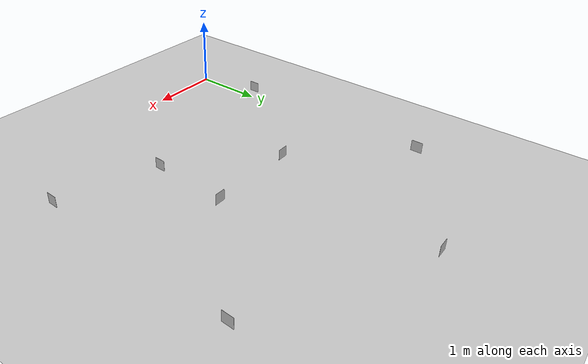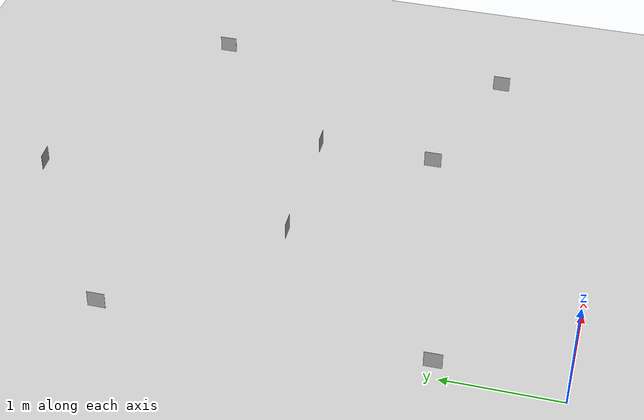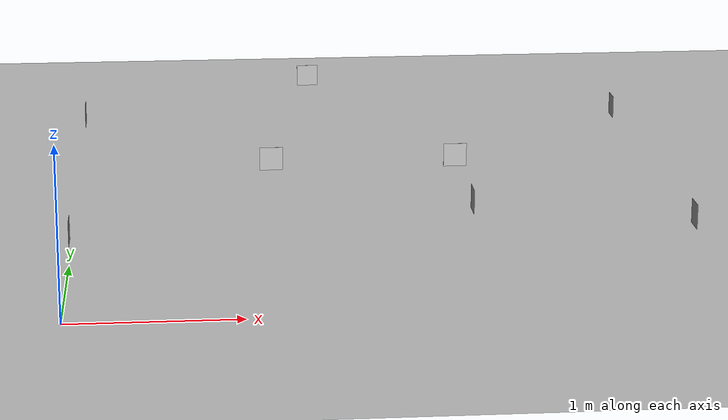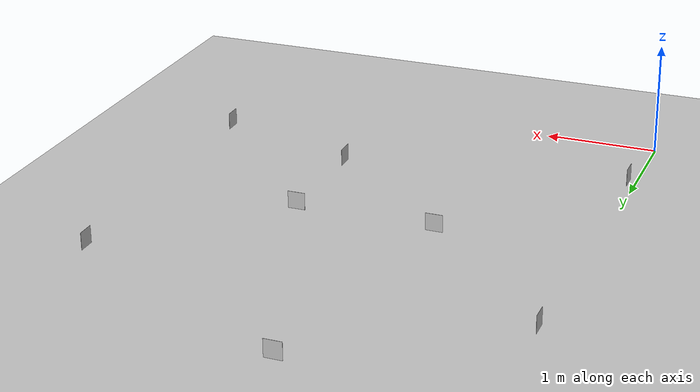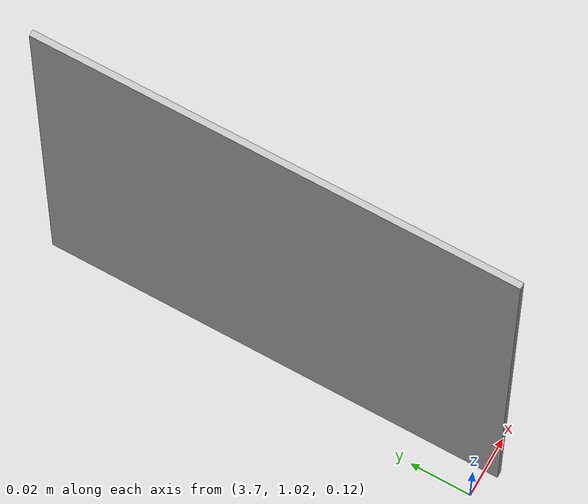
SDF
<sdf version="1.6">
 <world name="e80">
  <include><uri>model://sun</uri></include>
  <include><uri>model://ground_plane</uri></include>
  <include>
   <uri>model://aruco_4</uri>
   <name>aruco_4</name>
   <pose>0.0030 1.0500 0.2000 0.000000 1.570796 0.000000</pose>
  </include>
  <include>
   <uri>model://aruco_0</uri>
   <name>aruco_0</name>
   <pose>0.0030 3.7860 0.2000 0.000000 1.570796 0.000000</pose>
  </include>
  <include>
   <uri>model://aruco_1</uri>
   <name>aruco_1</name>
   <pose>1.6100 4.8420 0.2000 1.570796 0.000000 0.000000</pose>
  </include>
  <include>
   <uri>model://aruco_2</uri>
   <name>aruco_2</name>
   <pose>3.7080 3.7570 0.2000 0.000000 -1.570796 0.000000</pose>
  </include>
  <include>
   <uri>model://aruco_3</uri>
   <name>aruco_3</name>
   <pose>3.7080 1.0900 0.2000 0.000000 -1.570796 0.000000</pose>
  </include>
  <include>
   <uri>model://aruco_6</uri>
   <name>aruco_6</name>
   <pose>1.2430 2.5270 0.2000 1.570796 0.000000 0.000000</pose>
  </include>
  <include>
   <uri>model://aruco_5</uri>
   <name>aruco_5</name>
   <pose>2.4430 2.5270 0.2000 1.570796 0.000000 0.000000</pose>
  </include>
  <include>
   <uri>model://aruco_10</uri>
   <name>aruco_10</name>
   <pose>2.4280 1.5050 0.2000 0.000000 1.570796 0.000000</pose>
  </include>
 </world>
</sdf>

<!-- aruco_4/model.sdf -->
<sdf version="1.6">
  <model name="aruco_4">
    <static>true</static>
    <link name="link">
      <visual name="visual">
        <geometry>
          <box>
            <size>0.15 0.15 0.002</size>
          </box>
        </geometry>
        <material>
          <script>
            <uri>model://aruco_4/materials/scripts</uri>
            <uri>model://aruco_4/materials/textures</uri>
            <name>aruco_4/Marker</name>
          </script>
        </material>
      </visual>
    </link>
  </model>
</sdf>

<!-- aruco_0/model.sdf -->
<sdf version="1.6">
  <model name="aruco_0">
    <static>true</static>
    <link name="link">
      <visual name="visual">
        <geometry>
          <box>
            <size>0.15 0.15 0.002</size>
          </box>
        </geometry>
        <material>
          <script>
            <uri>model://aruco_0/materials/scripts</uri>
            <uri>model://aruco_0/materials/textures</uri>
            <name>aruco_0/Marker</name>
          </script>
        </material>
      </visual>
    </link>
  </model>
</sdf>

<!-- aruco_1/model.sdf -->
<sdf version="1.6">
  <model name="aruco_1">
    <static>true</static>
    <link name="link">
      <visual name="visual">
        <geometry>
          <box>
            <size>0.15 0.15 0.002</size>
          </box>
        </geometry>
        <material>
          <script>
            <uri>model://aruco_1/materials/scripts</uri>
            <uri>model://aruco_1/materials/textures</uri>
            <name>aruco_1/Marker</name>
          </script>
        </material>
      </visual>
    </link>
  </model>
</sdf>

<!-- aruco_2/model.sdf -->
<sdf version="1.6">
  <model name="aruco_2">
    <static>true</static>
    <link name="link">
      <visual name="visual">
        <geometry>
          <box>
            <size>0.15 0.15 0.002</size>
          </box>
        </geometry>
        <material>
          <script>
            <uri>model://aruco_2/materials/scripts</uri>
            <uri>model://aruco_2/materials/textures</uri>
            <name>aruco_2/Marker</name>
          </script>
        </material>
      </visual>
    </link>
  </model>
</sdf>

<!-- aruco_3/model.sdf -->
<sdf version="1.6">
  <model name="aruco_3">
    <static>true</static>
    <link name="link">
      <visual name="visual">
        <geometry>
          <box>
            <size>0.15 0.15 0.002</size>
          </box>
        </geometry>
        <material>
          <script>
            <uri>model://aruco_3/materials/scripts</uri>
            <uri>model://aruco_3/materials/textures</uri>
            <name>aruco_3/Marker</name>
          </script>
        </material>
      </visual>
    </link>
  </model>
</sdf>

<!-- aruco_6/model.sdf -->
<sdf version="1.6">
  <model name="aruco_6">
    <static>true</static>
    <link name="link">
      <visual name="visual">
        <geometry>
          <box>
            <size>0.15 0.15 0.002</size>
          </box>
        </geometry>
        <material>
          <script>
            <uri>model://aruco_6/materials/scripts</uri>
            <uri>model://aruco_6/materials/textures</uri>
            <name>aruco_6/Marker</name>
          </script>
        </material>
      </visual>
    </link>
  </model>
</sdf>

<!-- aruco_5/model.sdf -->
<sdf version="1.6">
  <model name="aruco_5">
    <static>true</static>
    <link name="link">
      <visual name="visual">
        <geometry>
          <box>
            <size>0.15 0.15 0.002</size>
          </box>
        </geometry>
        <material>
          <script>
            <uri>model://aruco_5/materials/scripts</uri>
            <uri>model://aruco_5/materials/textures</uri>
            <name>aruco_5/Marker</name>
          </script>
        </material>
      </visual>
    </link>
  </model>
</sdf>

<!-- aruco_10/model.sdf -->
<sdf version="1.6">
  <model name="aruco_10">
    <static>true</static>
    <link name="link">
      <visual name="visual">
        <geometry>
          <box>
            <size>0.15 0.15 0.002</size>
          </box>
        </geometry>
        <material>
          <script>
            <uri>model://aruco_10/materials/scripts</uri>
            <uri>model://aruco_10/materials/textures</uri>
            <name>aruco_10/Marker</name>
          </script>
        </material>
      </visual>
    </link>
  </model>
</sdf>
